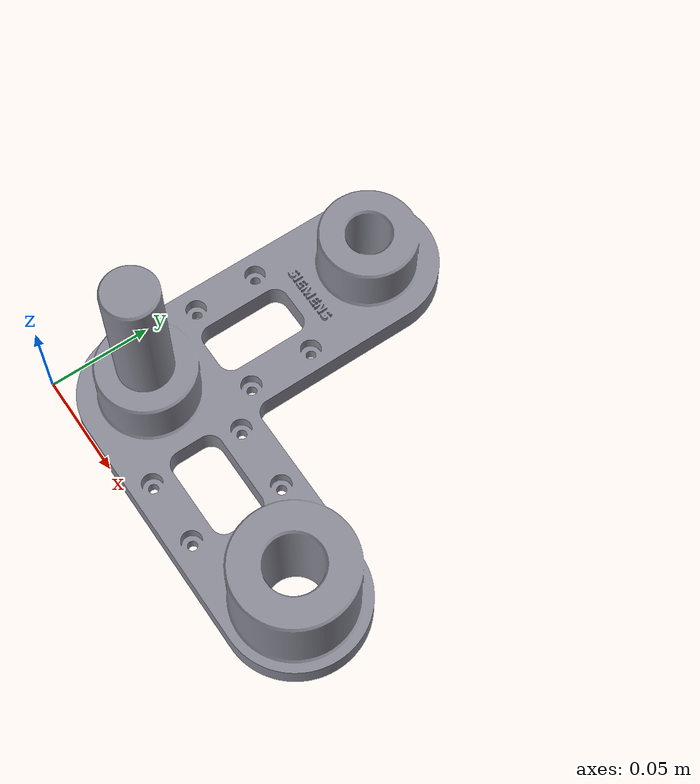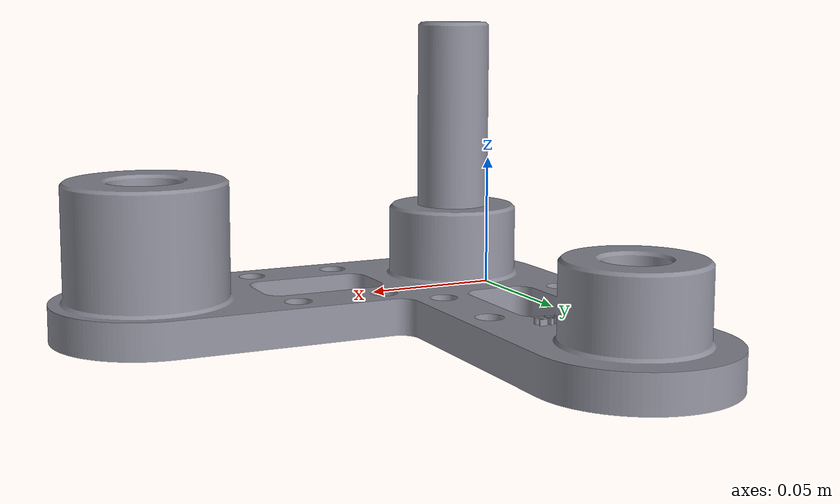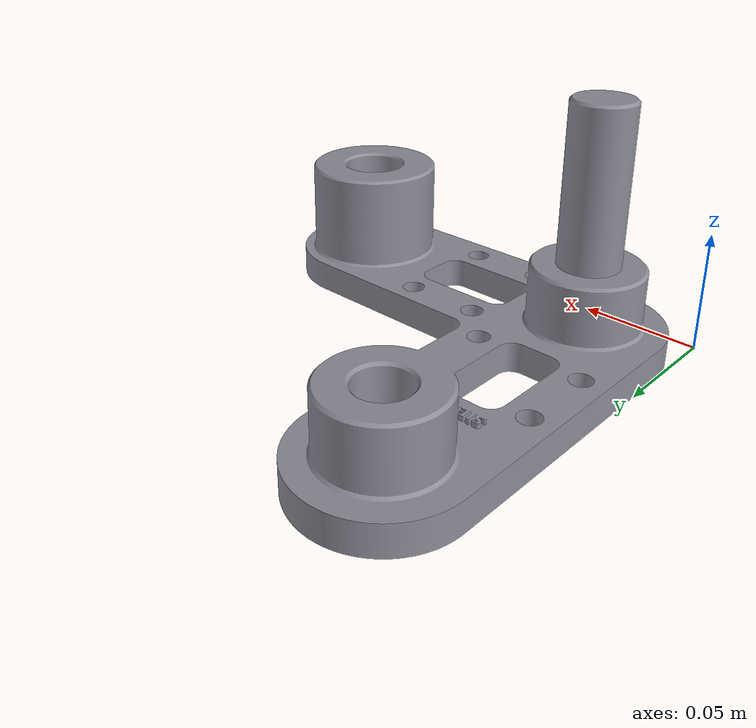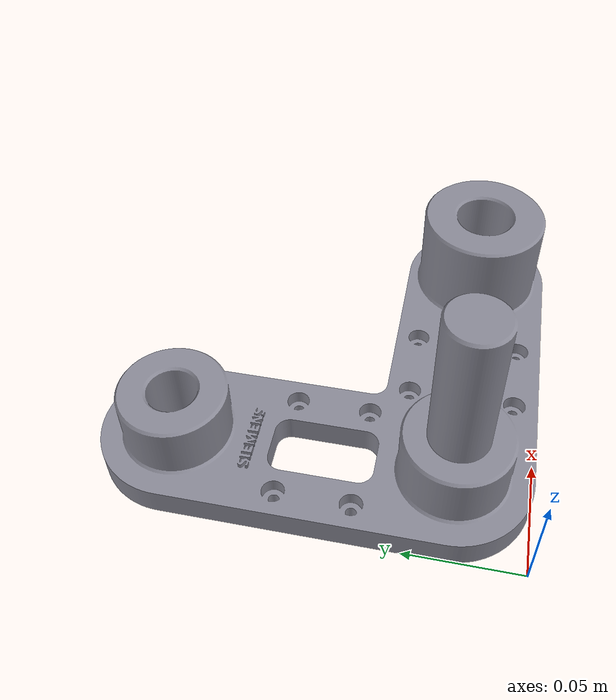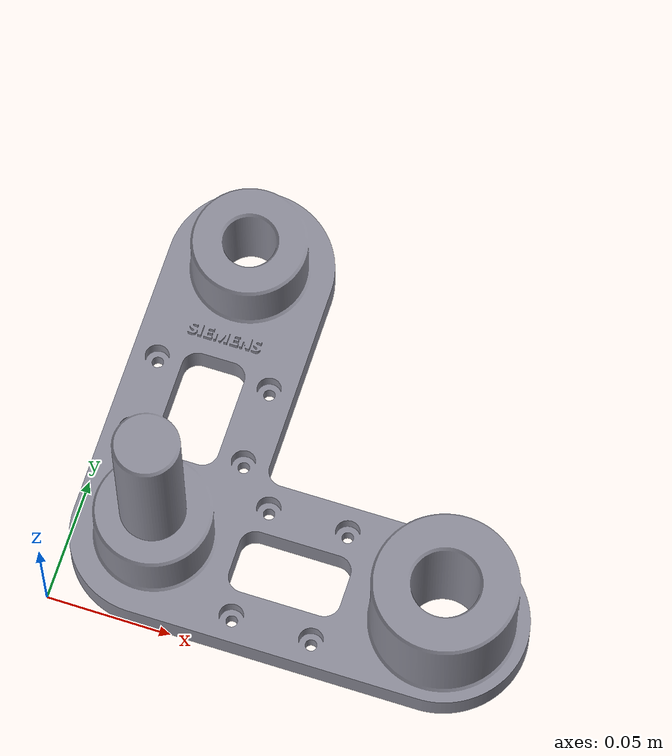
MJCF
<mujoco model="base_plate">
  <compiler angle="radian" autolimits="true" inertiafromgeom="true"
            meshdir="../assets/gearbox" texturedir="../assets/gearbox"/>

  <asset>
    <mesh name="base_plate" file="base_plate.stl" scale="1 1 1"/>
    <material name="metal_mat" rgba="0.55 0.55 0.60 1" specular="0.8" shininess="0.5" reflectance="0.3"/>
  </asset>

  <worldbody>
    <body name="base_plate">
      <freejoint name="base_plate_joint"/>
      <geom name="base_plate" mesh="base_plate" type="mesh" material="metal_mat"
            condim="6" friction="0.6 0.005 0.0001"
            solimp="0.99 0.99 0.001" solref="0.01 1"/>
    </body>
  </worldbody>
</mujoco>
